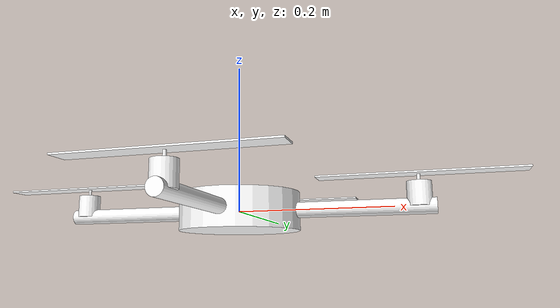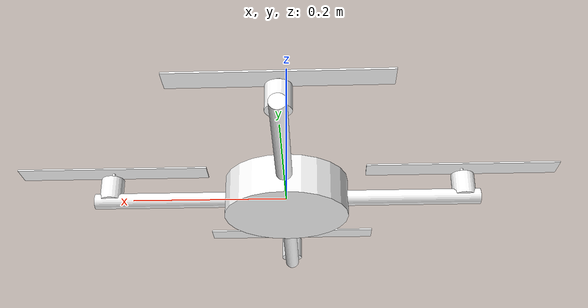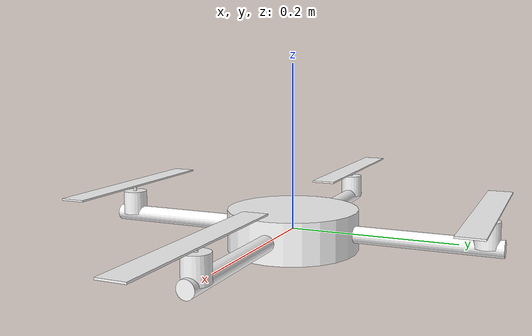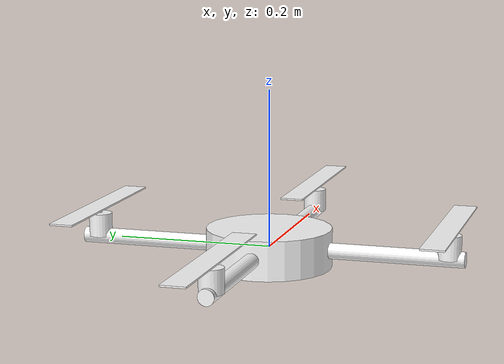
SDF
<?xml version="1.0" ?>
<sdf version="1.5">
  <model name="mrsim-quadrotor-cam">
    <link name="base">
      <inertial>
        <mass>1.0</mass>
        <inertia>
          <ixx>0.015</ixx><ixy>0</ixy><ixz>0</ixz>
          <iyy>0.015</iyy><iyz>0</iyz>
          <izz>0.007</izz>
        </inertia>
      </inertial>

      <collision name="base">
        <geometry>
          <cylinder><radius>0.1</radius><length>0.05</length></cylinder>
        </geometry>
      </collision>
      <!-- three spheres to make contact stable -->
      <collision name="land_1">
        <pose>0.1 0 0 0 0 0</pose>
        <geometry>
          <sphere><radius>0.03</radius></sphere>
        </geometry>
      </collision>
      <collision name="land_2">
        <pose>-0.05 0.086 0 0 0 0</pose>
        <geometry>
          <sphere><radius>0.03</radius></sphere>
        </geometry>
      </collision>
      <collision name="land_3">
        <pose>-0.05 -0.086 0 0 0 0</pose>
        <geometry>
          <sphere><radius>0.03</radius></sphere>
        </geometry>
      </collision>

      <visual name="body">
        <geometry>
          <cylinder><radius>0.08</radius><length>0.05</length></cylinder>
        </geometry>
        <material>
          <ambient>1.0 0.6 0.4 1</ambient>
          <diffuse>1.0 1.0 1.0 1</diffuse>
        </material>
      </visual>

      <visual name="arm-1">
        <pose>0.125 0 0 0 1.5708 0</pose>
        <geometry>
          <cylinder><radius>0.01</radius><length>0.25</length></cylinder>
        </geometry>
        <material>
          <ambient>1.0 0.4 0.4 1</ambient>
          <diffuse>1.0 1.0 1.0 1</diffuse>
        </material>
      </visual>
      <visual name="arm-2">
        <pose>0 0.125 0 0 1.5708 1.5708</pose>
        <geometry>
          <cylinder><radius>0.01</radius><length>0.25</length></cylinder>
        </geometry>
        <material>
          <ambient>0.6 0.6 0.6 1</ambient>
          <diffuse>1.0 1.0 1.0 1</diffuse>
        </material>
      </visual>
      <visual name="arm-3">
        <pose>-0.125 0 0 0 1.5708 0</pose>
        <geometry>
          <cylinder><radius>0.01</radius><length>0.25</length></cylinder>
        </geometry>
        <material>
          <ambient>0.6 0.6 0.6 1</ambient>
          <diffuse>1.0 1.0 1.0 1</diffuse>
        </material>
      </visual>
      <visual name="arm-4">
        <pose>0 -0.125 0 0 1.5708 1.5708</pose>
        <geometry>
          <cylinder><radius>0.01</radius><length>0.25</length></cylinder>
        </geometry>
        <material>
          <ambient>0.6 0.6 0.6 1</ambient>
          <diffuse>1.0 1.0 1.0 1</diffuse>
        </material>
      </visual>
    </link>

    <include>
      <uri>model://mrsim-rotor</uri>
      <name>rotor-1</name>
      <pose>0.23 0 0 0 0 0</pose>
    </include>
    <joint name="rotor-1" type="revolute">
      <parent>base</parent>
      <child>rotor-1::propeller</child>
      <axis><xyz>0 0 1</xyz></axis>
    </joint>

    <include>
      <uri>model://mrsim-rotor</uri>
      <name>rotor-2</name>
      <pose>0 0.23 0 0 0 0</pose>
    </include>
    <joint name="rotor-2" type="revolute">
      <parent>base</parent>
      <child>rotor-2::propeller</child>
      <axis><xyz>0 0 1</xyz></axis>
    </joint>

    <include>
      <uri>model://mrsim-rotor</uri>
      <name>rotor-3</name>
      <pose>-0.23 0 0 0 0 0</pose>
    </include>
    <joint name="rotor-3" type="revolute">
      <parent>base</parent>
      <child>rotor-3::propeller</child>
      <axis><xyz>0 0 1</xyz></axis>
    </joint>

    <include>
      <uri>model://mrsim-rotor</uri>
      <name>rotor-4</name>
      <pose>0 -0.23 0 0 0 0</pose>
    </include>
    <joint name="rotor-4" type="revolute">
      <parent>base</parent>
      <child>rotor-4::propeller</child>
      <axis><xyz>0 0 1</xyz></axis>
    </joint>

    <!--down cam link-->
    <link name="down_camera_link">
      <pose>0 0 0 0 1.5708 0 </pose>
      <inertial>
        <pose>0 0 0 0 0 0</pose>
        <mass>0.001</mass>
        <inertia>
          <ixx>3.2061e-05</ixx>
          <ixy>-1.169e-08</ixy>
          <ixz>-4.2601e-10</ixz>
          <iyy>3.0815e-05</iyy>
          <iyz>5.2182e-10</iyz>
          <izz>5.1652e-06</izz>
        </inertia>
      </inertial>
      <visual name='down_camera_visual'>
        <pose>0 0 0 0 0 0 </pose>
        <geometry>
          <cylinder><radius>0.02</radius><length>0.04</length></cylinder>
        </geometry>
        <material>
          <ambient>0.1 0.1 0.1 1</ambient>
          <diffuse>1.0 1.0 1.0 1</diffuse>
        </material>
      </visual>
      <gravity>1</gravity>
      <velocity_decay/>
      <self_collide>0</self_collide>
      <sensor name="down_camera" type="camera">                 <!-- name of sensor topic as well -->
        <pose>0 0 0 0 0 0</pose>
        <camera>
          <horizontal_fov>1</horizontal_fov>
          <image>
            <format>R8G8B8</format>
            <width>640</width>
            <height>480</height>
          </image>
          <clip>
            <near>0.05</near>
            <far>15000</far>
          </clip>
        </camera>
        <always_on>1</always_on>
        <update_rate>10</update_rate>
        <plugin filename="libgazebo_ros_camera.so" name="camera_en_ros">
          <robotNamespace></robotNamespace>
          <cameraName>down_camera_link</cameraName>
          <imageTopicName>down_raw_image</imageTopicName>
          <cameraInfoTopicName>down_info_image</cameraInfoTopicName>
          <FrameName>downCameraImage</FrameName>
          <Cy>0</Cy>
          <Cx>0</Cx>
          <updateRate>30.0</updateRate>
        </plugin>
      </sensor>
    </link>
    <joint name='down_camera_joint' type='fixed'>
      <child>down_camera_link</child>
      <parent>base</parent>
      <pose>0 0 0 0 0 0</pose>
      <axis>
        <xyz>1 0 0</xyz> 	<!--Useless... no? -->
      </axis>
    </joint>
    <!--down cam link end-->

    <plugin name="mrsim" filename="mrsim-gazebo.so">
      <link>base</link>

      <rotors>
        <noise>0.03</noise>
        <cf>6.5e-4</cf>
        <ct>1e-5</ct>
        <rotor><joint spin="cw">rotor-1</joint></rotor>
        <rotor><joint spin="ccw">rotor-2</joint></rotor>
        <rotor><joint spin="cw">rotor-3</joint></rotor>
        <rotor><joint spin="ccw">rotor-4</joint></rotor>
      </rotors>
    </plugin>
  </model>
</sdf>

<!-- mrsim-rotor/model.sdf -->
<sdf version="1.5">
  <model name="mrsim-rotor">
    <link name="propeller">
      <inertial>
        <mass>0.07</mass>
        <inertia>
          <ixx>4e-5</ixx><ixy>0</ixy><ixz>0</ixz>
          <iyy>4e-5</iyy><iyz>0</iyz>
          <izz>8e-5</izz>
        </inertia>
      </inertial>

      <collision name="collision">
        <pose>0 0 0.04 0 0 0</pose>
        <geometry>
          <cylinder><radius>0.127</radius><length>0.002</length></cylinder>
        </geometry>
      </collision>

      <visual name="motor">
        <pose>0 0 0.015 0 0 0</pose>
        <geometry>
          <cylinder><radius>0.015</radius><length>0.03</length></cylinder>
        </geometry>
        <material>
          <ambient>0.1 0.1 0.1 1</ambient>
          <diffuse>1.0 1.0 1.0 1</diffuse>
        </material>
      </visual>

      <visual name="axle">
        <pose>0 0 0.035 0 0 0</pose>
        <geometry>
          <cylinder><radius>0.002</radius><length>0.01</length></cylinder>
        </geometry>
        <material>
          <ambient>0.1 0.1 0.1 1</ambient>
          <diffuse>1.0 1.0 1.0 1</diffuse>
        </material>
      </visual>

      <visual name="blade">
        <pose>0 0 0.04 0 0 0</pose>
        <geometry>
          <box><size>0.25 0.03 0.002</size></box>
        </geometry>
        <material>
          <ambient>0.1 0.1 0.1 1</ambient>
          <diffuse>1.0 1.0 1.0 1</diffuse>
        </material>
      </visual>
    </link>
  </model>
</sdf>
